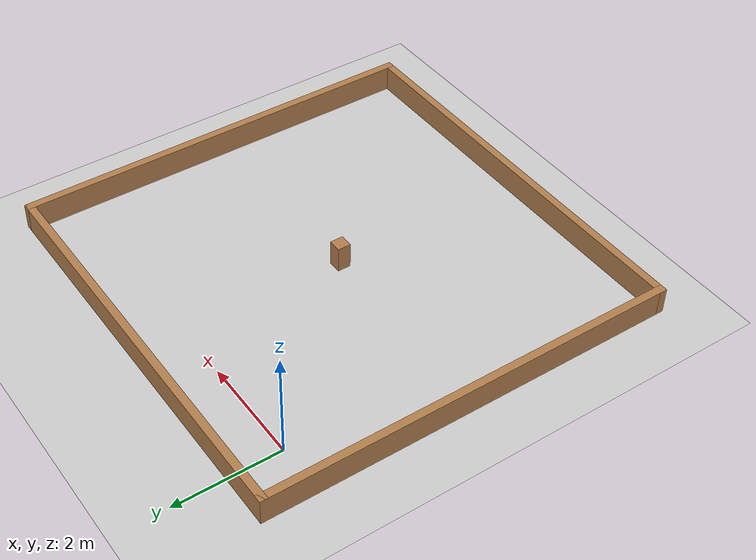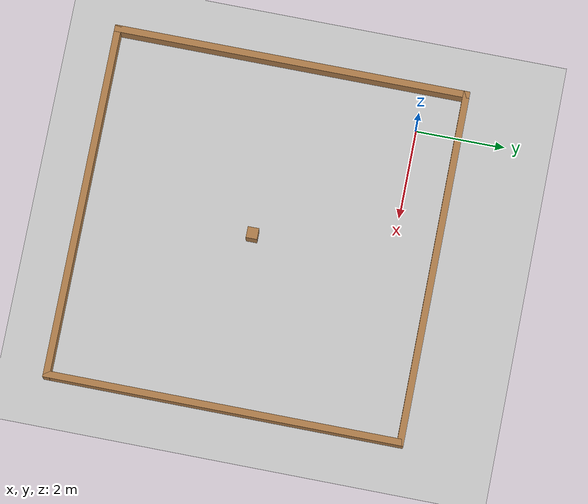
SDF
<sdf version="1.7">
 <world name="default">
  <light name="sun" type="directional">
   <pose>0 0 10 0 -0 0</pose>
   <diffuse>0.8 0.8 0.8 1</diffuse>
   <specular>0.2 0.2 0.2 1</specular>
   <attenuation>
    <range>1000</range>
    <constant>0.9</constant>
    <linear>0.01</linear>
    <quadratic>0.001</quadratic>
   </attenuation>
   <direction>-0.5 0.1 -0.9</direction>
   <spot><inner_angle>0</inner_angle><outer_angle>0</outer_angle><falloff>0</falloff></spot>
  </light>
  <model name="ground_plane">
   <static>1</static>
   <link name="link">
    <collision name="collision">
     <geometry><plane><normal>0 0 1</normal><size>100 100</size></plane></geometry>
     <surface>
      <contact><collide_bitmask>65535</collide_bitmask></contact>
      <friction><ode><mu>100</mu><mu2>50</mu2></ode></friction>
     </surface>
    </collision>
    <visual name="visual">
     <cast_shadows>0</cast_shadows>
     <geometry><plane><normal>0 0 1</normal><size>100 100</size></plane></geometry>
     <material>
      <script><uri>file://media/materials/scripts/gazebo.material</uri><name>Gazebo/Grey</name></script>
     </material>
    </visual>
   </link>
  </model>
  <gravity>0 0 -9.8</gravity>
  <magnetic_field>6e-06 2.3e-05 -4.2e-05</magnetic_field>
  <atmosphere type="adiabatic"/>
  <physics type="ode">
   <max_step_size>0.001</max_step_size>
   <real_time_factor>1</real_time_factor>
   <real_time_update_rate>1000</real_time_update_rate>
  </physics>
  <scene><ambient>0.4 0.4 0.4 1</ambient><background>0.7 0.7 0.7 1</background><shadows>1</shadows></scene>
  <audio><device>default</device></audio>
  <spherical_coordinates>
   <surface_model>EARTH_WGS84</surface_model>
   <latitude_deg>0</latitude_deg>
   <longitude_deg>0</longitude_deg>
   <elevation>0</elevation>
   <heading_deg>0</heading_deg>
  </spherical_coordinates>
  <model name="mcr_testing_map">
   <pose>3.00373 -3.14389 0 0 -0 0</pose>
   <link name="Wall_23">
    <collision name="Wall_23_Collision">
     <geometry><box><size>8 0.15 0.5</size></box></geometry>
     <pose>0 0 0.25 0 -0 0</pose>
    </collision>
    <visual name="Wall_23_Visual">
     <pose>0 0 0.25 0 -0 0</pose>
     <geometry><box><size>8 0.15 0.5</size></box></geometry>
     <material>
      <script><uri>file://media/materials/scripts/gazebo.material</uri><name>Gazebo/Wood</name></script>
      <ambient>1 1 1 1</ambient>
     </material>
     <meta><layer>0</layer></meta>
    </visual>
    <pose>-0 4.092 0 0 -0 0</pose>
   </link>
   <link name="Wall_24">
    <collision name="Wall_24_Collision">
     <geometry><box><size>8 0.15 0.5</size></box></geometry>
     <pose>0 0 0.25 0 -0 0</pose>
    </collision>
    <visual name="Wall_24_Visual">
     <pose>0 0 0.25 0 -0 0</pose>
     <geometry><box><size>8 0.15 0.5</size></box></geometry>
     <material>
      <script><uri>file://media/materials/scripts/gazebo.material</uri><name>Gazebo/Wood</name></script>
      <ambient>1 1 1 1</ambient>
     </material>
     <meta><layer>0</layer></meta>
    </visual>
    <pose>3.925 0.167 0 0 -0 -1.5708</pose>
   </link>
   <link name="Wall_29">
    <collision name="Wall_29_Collision">
     <geometry><box><size>8 0.15 0.5</size></box></geometry>
     <pose>0 0 0.25 0 -0 0</pose>
    </collision>
    <visual name="Wall_29_Visual">
     <pose>0 0 0.25 0 -0 0</pose>
     <geometry><box><size>8 0.15 0.5</size></box></geometry>
     <material>
      <script><uri>file://media/materials/scripts/gazebo.material</uri><name>Gazebo/Wood</name></script>
      <ambient>1 1 1 1</ambient>
     </material>
     <meta><layer>0</layer></meta>
    </visual>
    <pose>-0 -3.758 0 0 -0 3.14159</pose>
   </link>
   <link name="Wall_30">
    <collision name="Wall_30_Collision">
     <geometry><box><size>7.99981 0.15 0.5</size></box></geometry>
     <pose>0 0 0.25 0 -0 0</pose>
    </collision>
    <visual name="Wall_30_Visual">
     <pose>0 0 0.25 0 -0 0</pose>
     <geometry><box><size>7.99981 0.15 0.5</size></box></geometry>
     <material>
      <script><uri>file://media/materials/scripts/gazebo.material</uri><name>Gazebo/Wood</name></script>
      <ambient>1 1 1 1</ambient>
     </material>
     <meta><layer>0</layer></meta>
    </visual>
    <pose>-3.925 0.167 0 0 -0 1.5708</pose>
   </link>
   <link name="Wall_38">
    <collision name="Wall_38_Collision">
     <geometry><box><size>0.25 0.25 0.5</size></box></geometry>
     <pose>0 0 0.25 0 -0 0</pose>
    </collision>
    <visual name="Wall_38_Visual">
     <pose>0 0 0.25 0 -0 0</pose>
     <geometry><box><size>0.25 0.25 0.5</size></box></geometry>
     <material>
      <script><uri>file://media/materials/scripts/gazebo.material</uri><name>Gazebo/Wood</name></script>
      <ambient>1 1 1 1</ambient>
     </material>
     <meta><layer>0</layer></meta>
    </visual>
    <pose>0.013 0.05 0 0 -0 0</pose>
   </link>
   <static>1</static>
  </model>
 </world>
</sdf>
